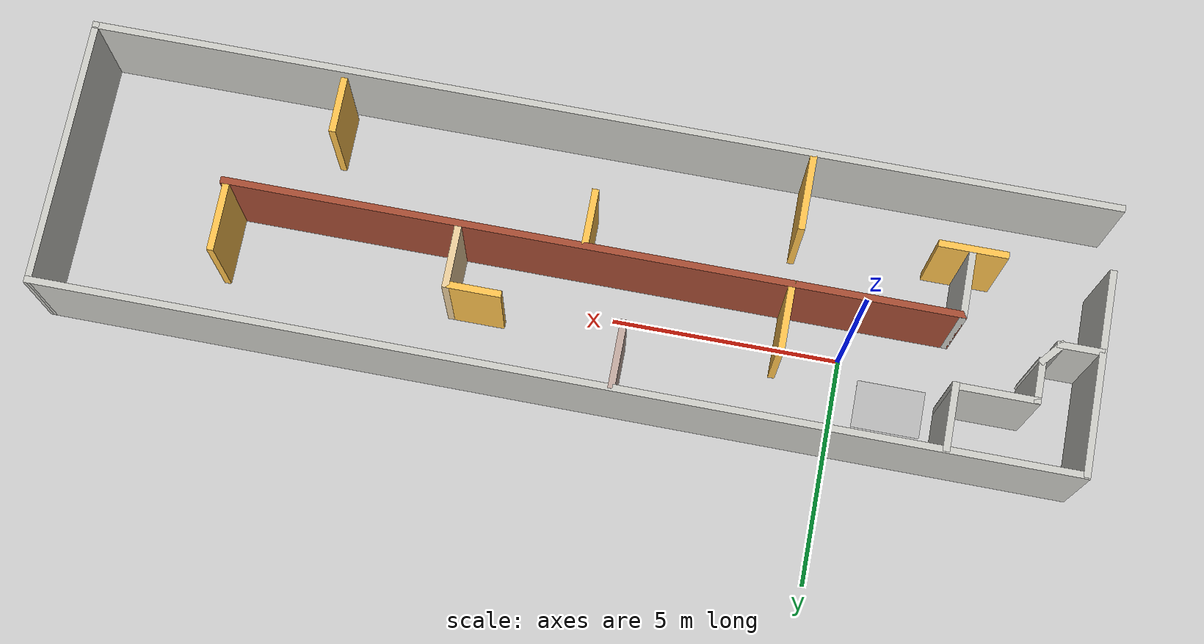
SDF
<sdf version="1.6">
 <world name="racecar_tunnel">
  <model name="ground_plane">
   <static>1</static>
   <link name="link">
    <collision name="collision">
     <geometry><plane><normal>0 0 1</normal><size>150 150</size></plane></geometry>
     <surface><friction><ode><mu>100</mu><mu2>50</mu2></ode></friction></surface>
    </collision>
    <visual name="visual">
     <cast_shadows>0</cast_shadows>
     <geometry><plane><normal>0 0 1</normal><size>150 150</size></plane></geometry>
     <material>
      <script><uri>file://media/materials/scripts/gazebo.material</uri><name>Gazebo/Grey</name></script>
     </material>
    </visual>
   </link>
  </model>
  <gravity>0 0 -9.8</gravity>
  <magnetic_field>6e-06 2.3e-05 -4.2e-05</magnetic_field>
  <atmosphere type="adiabatic"/>
  <physics name="default_physics" default="0" type="ode">
   <max_step_size>0.001</max_step_size>
   <real_time_factor>1</real_time_factor>
   <real_time_update_rate>1000</real_time_update_rate>
  </physics>
  <scene><ambient>0.4 0.4 0.4 1</ambient><background>0.7 0.7 0.7 1</background><shadows>1</shadows></scene>
  <audio><device>default</device></audio>
  <spherical_coordinates>
   <surface_model>EARTH_WGS84</surface_model>
   <latitude_deg>0</latitude_deg>
   <longitude_deg>0</longitude_deg>
   <elevation>0</elevation>
   <heading_deg>0</heading_deg>
  </spherical_coordinates>
  <light name="user_spot_light_0" type="spot">
   <pose>16.6521 12.1315 1 0 -0 0</pose>
   <diffuse>1 0 0 1</diffuse>
   <specular>0.1 0.1 0.1 1</specular>
   <direction>0 0 -1</direction>
   <attenuation>
    <range>20</range>
    <constant>0.5</constant>
    <linear>0.01</linear>
    <quadratic>0.001</quadratic>
   </attenuation>
   <cast_shadows>0</cast_shadows>
   <spot><inner_angle>0.6</inner_angle><outer_angle>1</outer_angle><falloff>1</falloff></spot>
  </light>
  <light name="user_spot_light_1" type="spot">
   <pose>14.2239 -0.851797 1 0 -0 0</pose>
   <diffuse>0 1 0 1</diffuse>
   <specular>0.1 0.1 0.1 1</specular>
   <direction>0 0 -1</direction>
   <attenuation>
    <range>20</range>
    <constant>0.5</constant>
    <linear>0.01</linear>
    <quadratic>0.001</quadratic>
   </attenuation>
   <cast_shadows>0</cast_shadows>
   <spot><inner_angle>0.6</inner_angle><outer_angle>1</outer_angle><falloff>1</falloff></spot>
  </light>
  <light name="user_spot_light_2" type="spot">
   <pose>14.5264 -0.727429 1 0 -0 0</pose>
   <diffuse>0 0 1 1</diffuse>
   <specular>0.1 0.1 0.1 1</specular>
   <direction>0 0 -1</direction>
   <attenuation>
    <range>20</range>
    <constant>0.5</constant>
    <linear>0.01</linear>
    <quadratic>0.001</quadratic>
   </attenuation>
   <cast_shadows>0</cast_shadows>
   <spot><inner_angle>0.6</inner_angle><outer_angle>1</outer_angle><falloff>1</falloff></spot>
  </light>
  <model name="iFlyDinnerHall">
   <link name="Wall_38">
    <pose>0.289282 -0.022074 0 0 -0 0</pose>
    <visual name="Wall_38_Visual">
     <pose>0 0 1.25 0 -0 0</pose>
     <geometry><box><size>16 0.15 2.5</size></box></geometry>
     <material>
      <script><uri>file://media/materials/scripts/gazebo.material</uri><name>Gazebo/Bricks</name></script>
      <ambient>1 1 1 1</ambient>
     </material>
     <meta><layer>0</layer></meta>
    </visual>
    <collision name="Wall_38_Collision">
     <pose>0 0 1.25 0 -0 0</pose>
     <geometry><box><size>16 0.15 2.5</size></box></geometry>
     <surface>
      <friction>
       <ode><mu>1</mu><mu2>1</mu2><fdir1>0 0 0</fdir1><slip1>0</slip1><slip2>0</slip2></ode>
       <torsional>
        <coefficient>1</coefficient>
        <patch_radius>0</patch_radius>
        <surface_radius>0</surface_radius>
        <use_patch_radius>1</use_patch_radius>
        <ode><slip>0</slip></ode>
       </torsional>
      </friction>
      <bounce><restitution_coefficient>0</restitution_coefficient><threshold>1e+06</threshold></bounce>
      <contact>
       <collide_without_contact>0</collide_without_contact>
       <collide_without_contact_bitmask>1</collide_without_contact_bitmask>
       <collide_bitmask>1</collide_bitmask>
       <ode>
        <soft_cfm>0</soft_cfm>
        <soft_erp>0.2</soft_erp>
        <kp>1e+13</kp>
        <kd>1</kd>
        <max_vel>0.01</max_vel>
        <min_depth>0</min_depth>
       </ode>
       <bullet>
        <split_impulse>1</split_impulse>
        <split_impulse_penetration_threshold>-0.01</split_impulse_penetration_threshold>
        <soft_cfm>0</soft_cfm>
        <soft_erp>0.2</soft_erp>
        <kp>1e+13</kp>
        <kd>1</kd>
       </bullet>
      </contact>
     </surface>
    </collision>
   </link>
   <link name="Wall_40">
    <pose>-0.001247 2.91935 0 0 -0 0</pose>
    <visual name="Wall_40_Visual">
     <pose>0 0 1.25 0 -0 0</pose>
     <geometry><box><size>22.5 0.15 2.5</size></box></geometry>
     <material>
      <script><uri>file://media/materials/scripts/gazebo.material</uri><name>Gazebo/CeilingTiled</name></script>
      <ambient>1 1 1 1</ambient>
     </material>
     <meta><layer>0</layer></meta>
    </visual>
    <collision name="Wall_40_Collision">
     <pose>0 0 1.25 0 -0 0</pose>
     <geometry><box><size>22.5 0.15 2.5</size></box></geometry>
     <surface>
      <friction>
       <ode><mu>1</mu><mu2>1</mu2><fdir1>0 0 0</fdir1><slip1>0</slip1><slip2>0</slip2></ode>
       <torsional>
        <coefficient>1</coefficient>
        <patch_radius>0</patch_radius>
        <surface_radius>0</surface_radius>
        <use_patch_radius>1</use_patch_radius>
        <ode><slip>0</slip></ode>
       </torsional>
      </friction>
      <bounce><restitution_coefficient>0</restitution_coefficient><threshold>1e+06</threshold></bounce>
      <contact>
       <collide_without_contact>0</collide_without_contact>
       <collide_without_contact_bitmask>1</collide_without_contact_bitmask>
       <collide_bitmask>1</collide_bitmask>
       <ode>
        <soft_cfm>0</soft_cfm>
        <soft_erp>0.2</soft_erp>
        <kp>1e+13</kp>
        <kd>1</kd>
        <max_vel>0.01</max_vel>
        <min_depth>0</min_depth>
       </ode>
       <bullet>
        <split_impulse>1</split_impulse>
        <split_impulse_penetration_threshold>-0.01</split_impulse_penetration_threshold>
        <soft_cfm>0</soft_cfm>
        <soft_erp>0.2</soft_erp>
        <kp>1e+13</kp>
        <kd>1</kd>
       </bullet>
      </contact>
     </surface>
    </collision>
   </link>
   <link name="Wall_43">
    <pose>11.1738 -0.725696 0 0 0 -1.57079</pose>
    <inertial>
     <mass>1</mass>
     <inertia><ixx>1</ixx><ixy>0</ixy><ixz>0</ixz><iyy>1</iyy><iyz>0</iyz><izz>1</izz></inertia>
    </inertial>
    <visual name="Wall_43_Visual">
     <pose>0 0 1.25 0 -0 0</pose>
     <geometry><box><size>4.5 0.15 2.5</size></box></geometry>
     <material>
      <script><uri>file://media/materials/scripts/gazebo.material</uri><name>Gazebo/CeilingTiled</name></script>
      <ambient>1 1 1 1</ambient>
      <shader type="vertex"><normal_map>__default__</normal_map></shader>
      <diffuse>1 1 1 1</diffuse>
      <specular>0 0 0 1</specular>
      <emissive>0 0 0 1</emissive>
     </material>
     <meta><layer>0</layer></meta>
    </visual>
    <collision name="Wall_43_Collision">
     <pose>0 0 1.25 0 -0 0</pose>
     <geometry><box><size>4.5 0.15 2.5</size></box></geometry>
     <surface>
      <friction>
       <ode><mu>1</mu><mu2>1</mu2><fdir1>0 0 0</fdir1><slip1>0</slip1><slip2>0</slip2></ode>
       <torsional>
        <coefficient>1</coefficient>
        <patch_radius>0</patch_radius>
        <surface_radius>0</surface_radius>
        <use_patch_radius>1</use_patch_radius>
        <ode><slip>0</slip></ode>
       </torsional>
      </friction>
      <bounce><restitution_coefficient>0</restitution_coefficient><threshold>1e+06</threshold></bounce>
      <contact>
       <collide_without_contact>0</collide_without_contact>
       <collide_without_contact_bitmask>1</collide_without_contact_bitmask>
       <collide_bitmask>1</collide_bitmask>
       <ode>
        <soft_cfm>0</soft_cfm>
        <soft_erp>0.2</soft_erp>
        <kp>1e+13</kp>
        <kd>1</kd>
        <max_vel>0.01</max_vel>
        <min_depth>0</min_depth>
       </ode>
       <bullet>
        <split_impulse>1</split_impulse>
        <split_impulse_penetration_threshold>-0.01</split_impulse_penetration_threshold>
        <soft_cfm>0</soft_cfm>
        <soft_erp>0.2</soft_erp>
        <kp>1e+13</kp>
        <kd>1</kd>
       </bullet>
      </contact>
     </surface>
    </collision>
   </link>
   <link name="Wall_45">
    <pose>8.21428 0.652926 0 0 -0 1.5708</pose>
    <visual name="Wall_45_Visual">
     <pose>0 0 1.25 0 -0 0</pose>
     <geometry><box><size>1.5 0.15 2.5</size></box></geometry>
     <material>
      <script><uri>file://media/materials/scripts/gazebo.material</uri><name>Gazebo/CeilingTiled</name></script>
      <ambient>1 0.764706 0.305882 1</ambient>
     </material>
     <meta><layer>0</layer></meta>
    </visual>
    <collision name="Wall_45_Collision">
     <pose>0 0 1.25 0 -0 0</pose>
     <geometry><box><size>1.5 0.15 2.5</size></box></geometry>
     <surface>
      <friction>
       <ode><mu>1</mu><mu2>1</mu2><fdir1>0 0 0</fdir1><slip1>0</slip1><slip2>0</slip2></ode>
       <torsional>
        <coefficient>1</coefficient>
        <patch_radius>0</patch_radius>
        <surface_radius>0</surface_radius>
        <use_patch_radius>1</use_patch_radius>
        <ode><slip>0</slip></ode>
       </torsional>
      </friction>
      <bounce><restitution_coefficient>0</restitution_coefficient><threshold>1e+06</threshold></bounce>
      <contact>
       <collide_without_contact>0</collide_without_contact>
       <collide_without_contact_bitmask>1</collide_without_contact_bitmask>
       <collide_bitmask>1</collide_bitmask>
       <ode>
        <soft_cfm>0</soft_cfm>
        <soft_erp>0.2</soft_erp>
        <kp>1e+13</kp>
        <kd>1</kd>
        <max_vel>0.01</max_vel>
        <min_depth>0</min_depth>
       </ode>
       <bullet>
        <split_impulse>1</split_impulse>
        <split_impulse_penetration_threshold>-0.01</split_impulse_penetration_threshold>
        <soft_cfm>0</soft_cfm>
        <soft_erp>0.2</soft_erp>
        <kp>1e+13</kp>
        <kd>1</kd>
       </bullet>
      </contact>
     </surface>
    </collision>
   </link>
   <link name="Wall_47">
    <pose>4.58768 2.06563 0 0 0 -1.5708</pose>
    <visual name="Wall_47_Visual">
     <pose>0 0 1.25 0 -0 0</pose>
     <geometry><box><size>1.75 0.15 2.5</size></box></geometry>
     <material>
      <script><uri>file://media/materials/scripts/gazebo.material</uri><name>Gazebo/Grey</name></script>
      <ambient>1 0.764706 0.305882 1</ambient>
     </material>
     <meta><layer>0</layer></meta>
    </visual>
    <collision name="Wall_47_Collision">
     <pose>0 0 1.25 0 -0 0</pose>
     <geometry><box><size>1.75 0.15 2.5</size></box></geometry>
     <surface>
      <friction>
       <ode><mu>1</mu><mu2>1</mu2><fdir1>0 0 0</fdir1><slip1>0</slip1><slip2>0</slip2></ode>
       <torsional>
        <coefficient>1</coefficient>
        <patch_radius>0</patch_radius>
        <surface_radius>0</surface_radius>
        <use_patch_radius>1</use_patch_radius>
        <ode><slip>0</slip></ode>
       </torsional>
      </friction>
      <bounce><restitution_coefficient>0</restitution_coefficient><threshold>1e+06</threshold></bounce>
      <contact>
       <collide_without_contact>0</collide_without_contact>
       <collide_without_contact_bitmask>1</collide_without_contact_bitmask>
       <collide_bitmask>1</collide_bitmask>
       <ode>
        <soft_cfm>0</soft_cfm>
        <soft_erp>0.2</soft_erp>
        <kp>1e+13</kp>
        <kd>1</kd>
        <max_vel>0.01</max_vel>
        <min_depth>0</min_depth>
       </ode>
       <bullet>
        <split_impulse>1</split_impulse>
        <split_impulse_penetration_threshold>-0.01</split_impulse_penetration_threshold>
        <soft_cfm>0</soft_cfm>
        <soft_erp>0.2</soft_erp>
        <kp>1e+13</kp>
        <kd>1</kd>
       </bullet>
      </contact>
     </surface>
    </collision>
   </link>
   <link name="Wall_51">
    <pose>0.161551 0.632231 0 0 0 -1.57079</pose>
    <visual name="Wall_51_Visual">
     <pose>0 0 1.25 0 -0 0</pose>
     <geometry><box><size>1.25 0.15 2.5</size></box></geometry>
     <material>
      <script><uri>file://media/materials/scripts/gazebo.material</uri><name>Gazebo/Grey</name></script>
      <ambient>1 0.764706 0.305882 1</ambient>
     </material>
     <meta><layer>0</layer></meta>
    </visual>
    <collision name="Wall_51_Collision">
     <pose>0 0 1.25 0 -0 0</pose>
     <geometry><box><size>1.25 0.15 2.5</size></box></geometry>
     <surface>
      <friction>
       <ode><mu>1</mu><mu2>1</mu2><fdir1>0 0 0</fdir1><slip1>0</slip1><slip2>0</slip2></ode>
       <torsional>
        <coefficient>1</coefficient>
        <patch_radius>0</patch_radius>
        <surface_radius>0</surface_radius>
        <use_patch_radius>1</use_patch_radius>
        <ode><slip>0</slip></ode>
       </torsional>
      </friction>
      <bounce><restitution_coefficient>0</restitution_coefficient><threshold>1e+06</threshold></bounce>
      <contact>
       <collide_without_contact>0</collide_without_contact>
       <collide_without_contact_bitmask>1</collide_without_contact_bitmask>
       <collide_bitmask>1</collide_bitmask>
       <ode>
        <soft_cfm>0</soft_cfm>
        <soft_erp>0.2</soft_erp>
        <kp>1e+13</kp>
        <kd>1</kd>
        <max_vel>0.01</max_vel>
        <min_depth>0</min_depth>
       </ode>
       <bullet>
        <split_impulse>1</split_impulse>
        <split_impulse_penetration_threshold>-0.01</split_impulse_penetration_threshold>
        <soft_cfm>0</soft_cfm>
        <soft_erp>0.2</soft_erp>
        <kp>1e+13</kp>
        <kd>1</kd>
       </bullet>
      </contact>
     </surface>
    </collision>
   </link>
   <link name="Wall_53">
    <pose>-5.61929 2.1035 0 0 -0 1.57081</pose>
    <visual name="Wall_53_Visual">
     <pose>0 0 1.25 0 -0 0</pose>
     <geometry><box><size>1.25 0.15 2.5</size></box></geometry>
     <material>
      <script><uri>file://media/materials/scripts/gazebo.material</uri><name>Gazebo/Grey</name></script>
      <ambient>1 0.764706 0.305882 1</ambient>
     </material>
     <meta><layer>0</layer></meta>
    </visual>
    <collision name="Wall_53_Collision">
     <pose>0 0 1.25 0 -0 0</pose>
     <geometry><box><size>1.25 0.15 2.5</size></box></geometry>
     <surface>
      <friction>
       <ode><mu>1</mu><mu2>1</mu2><fdir1>0 0 0</fdir1><slip1>0</slip1><slip2>0</slip2></ode>
       <torsional>
        <coefficient>1</coefficient>
        <patch_radius>0</patch_radius>
        <surface_radius>0</surface_radius>
        <use_patch_radius>1</use_patch_radius>
        <ode><slip>0</slip></ode>
       </torsional>
      </friction>
      <bounce><restitution_coefficient>0</restitution_coefficient><threshold>1e+06</threshold></bounce>
      <contact>
       <collide_without_contact>0</collide_without_contact>
       <collide_without_contact_bitmask>1</collide_without_contact_bitmask>
       <collide_bitmask>1</collide_bitmask>
       <ode>
        <soft_cfm>0</soft_cfm>
        <soft_erp>0.2</soft_erp>
        <kp>1e+13</kp>
        <kd>1</kd>
        <max_vel>0.01</max_vel>
        <min_depth>0</min_depth>
       </ode>
       <bullet>
        <split_impulse>1</split_impulse>
        <split_impulse_penetration_threshold>-0.01</split_impulse_penetration_threshold>
        <soft_cfm>0</soft_cfm>
        <soft_erp>0.2</soft_erp>
        <kp>1e+13</kp>
        <kd>1</kd>
       </bullet>
      </contact>
     </surface>
    </collision>
   </link>
   <link name="Wall_55">
    <pose>-11.1762 -0.00565 0 0 0 -1.5708</pose>
    <visual name="Wall_55_Visual">
     <pose>0 0 1.25 0 -0 0</pose>
     <geometry><box><size>6 0.15 2.5</size></box></geometry>
     <material>
      <script><uri>file://media/materials/scripts/gazebo.material</uri><name>Gazebo/CeilingTiled</name></script>
      <ambient>1 1 1 1</ambient>
     </material>
     <meta><layer>0</layer></meta>
    </visual>
    <collision name="Wall_55_Collision">
     <pose>0 0 1.25 0 -0 0</pose>
     <geometry><box><size>6 0.15 2.5</size></box></geometry>
     <surface>
      <friction>
       <ode><mu>1</mu><mu2>1</mu2><fdir1>0 0 0</fdir1><slip1>0</slip1><slip2>0</slip2></ode>
       <torsional>
        <coefficient>1</coefficient>
        <patch_radius>0</patch_radius>
        <surface_radius>0</surface_radius>
        <use_patch_radius>1</use_patch_radius>
        <ode><slip>0</slip></ode>
       </torsional>
      </friction>
      <bounce><restitution_coefficient>0</restitution_coefficient><threshold>1e+06</threshold></bounce>
      <contact>
       <collide_without_contact>0</collide_without_contact>
       <collide_without_contact_bitmask>1</collide_without_contact_bitmask>
       <collide_bitmask>1</collide_bitmask>
       <ode>
        <soft_cfm>0</soft_cfm>
        <soft_erp>0.2</soft_erp>
        <kp>1e+13</kp>
        <kd>1</kd>
        <max_vel>0.01</max_vel>
        <min_depth>0</min_depth>
       </ode>
       <bullet>
        <split_impulse>1</split_impulse>
        <split_impulse_penetration_threshold>-0.01</split_impulse_penetration_threshold>
        <soft_cfm>0</soft_cfm>
        <soft_erp>0.2</soft_erp>
        <kp>1e+13</kp>
        <kd>1</kd>
       </bullet>
      </contact>
     </surface>
    </collision>
   </link>
   <link name="Wall_59">
    <pose>-0.001247 -2.93065 0 0 -0 0</pose>
    <visual name="Wall_59_Visual">
     <pose>0 0 1.25 0 -0 0</pose>
     <geometry><box><size>22.5 0.15 2.5</size></box></geometry>
     <material>
      <script><uri>file://media/materials/scripts/gazebo.material</uri><name>Gazebo/CeilingTiled</name></script>
      <ambient>1 1 1 1</ambient>
     </material>
     <meta><layer>0</layer></meta>
    </visual>
    <collision name="Wall_59_Collision">
     <pose>0 0 1.25 0 -0 0</pose>
     <geometry><box><size>22.5 0.15 2.5</size></box></geometry>
     <surface>
      <friction>
       <ode><mu>1</mu><mu2>1</mu2><fdir1>0 0 0</fdir1><slip1>0</slip1><slip2>0</slip2></ode>
       <torsional>
        <coefficient>1</coefficient>
        <patch_radius>0</patch_radius>
        <surface_radius>0</surface_radius>
        <use_patch_radius>1</use_patch_radius>
        <ode><slip>0</slip></ode>
       </torsional>
      </friction>
      <bounce><restitution_coefficient>0</restitution_coefficient><threshold>1e+06</threshold></bounce>
      <contact>
       <collide_without_contact>0</collide_without_contact>
       <collide_without_contact_bitmask>1</collide_without_contact_bitmask>
       <collide_bitmask>1</collide_bitmask>
       <ode>
        <soft_cfm>0</soft_cfm>
        <soft_erp>0.2</soft_erp>
        <kp>1e+13</kp>
        <kd>1</kd>
        <max_vel>0.01</max_vel>
        <min_depth>0</min_depth>
       </ode>
       <bullet>
        <split_impulse>1</split_impulse>
        <split_impulse_penetration_threshold>-0.01</split_impulse_penetration_threshold>
        <soft_cfm>0</soft_cfm>
        <soft_erp>0.2</soft_erp>
        <kp>1e+13</kp>
        <kd>1</kd>
       </bullet>
      </contact>
     </surface>
    </collision>
   </link>
   <link name="Wall_67">
    <pose>8.22711 1.43575 0 0 -0 0</pose>
    <visual name="Wall_67_Visual">
     <pose>0 0 1.25 0 -0 0</pose>
     <geometry><box><size>1.5 0.15 2.5</size></box></geometry>
     <material>
      <script><uri>file://media/materials/scripts/gazebo.material</uri><name>Gazebo/Grey</name></script>
      <ambient>1 0.764706 0.305882 1</ambient>
     </material>
     <meta><layer>0</layer></meta>
    </visual>
    <collision name="Wall_67_Collision">
     <pose>0 0 1.25 0 -0 0</pose>
     <geometry><box><size>1.5 0.15 2.5</size></box></geometry>
     <surface>
      <friction>
       <ode><mu>1</mu><mu2>1</mu2><fdir1>0 0 0</fdir1><slip1>0</slip1><slip2>0</slip2></ode>
       <torsional>
        <coefficient>1</coefficient>
        <patch_radius>0</patch_radius>
        <surface_radius>0</surface_radius>
        <use_patch_radius>1</use_patch_radius>
        <ode><slip>0</slip></ode>
       </torsional>
      </friction>
      <bounce><restitution_coefficient>0</restitution_coefficient><threshold>1e+06</threshold></bounce>
      <contact>
       <collide_without_contact>0</collide_without_contact>
       <collide_without_contact_bitmask>1</collide_without_contact_bitmask>
       <collide_bitmask>1</collide_bitmask>
       <ode>
        <soft_cfm>0</soft_cfm>
        <soft_erp>0.2</soft_erp>
        <kp>1e+13</kp>
        <kd>1</kd>
        <max_vel>0.01</max_vel>
        <min_depth>0</min_depth>
       </ode>
       <bullet>
        <split_impulse>1</split_impulse>
        <split_impulse_penetration_threshold>-0.01</split_impulse_penetration_threshold>
        <soft_cfm>0</soft_cfm>
        <soft_erp>0.2</soft_erp>
        <kp>1e+13</kp>
        <kd>1</kd>
       </bullet>
      </contact>
     </surface>
    </collision>
   </link>
   <link name="Wall_69">
    <pose>-7.57062 -0.838015 0 0 -0 1.57081</pose>
    <visual name="Wall_69_Visual">
     <pose>0 0 1.25 0 -0 0</pose>
     <geometry><box><size>1.5 0.15 2.5</size></box></geometry>
     <material>
      <script><uri>file://media/materials/scripts/gazebo.material</uri><name>Gazebo/Grey</name></script>
      <ambient>1 0.764706 0.305882 1</ambient>
     </material>
     <meta><layer>0</layer></meta>
    </visual>
    <collision name="Wall_69_Collision">
     <pose>0 0 1.25 0 -0 0</pose>
     <geometry><box><size>1.5 0.15 2.5</size></box></geometry>
     <surface>
      <friction>
       <ode><mu>1</mu><mu2>1</mu2><fdir1>0 0 0</fdir1><slip1>0</slip1><slip2>0</slip2></ode>
       <torsional>
        <coefficient>1</coefficient>
        <patch_radius>0</patch_radius>
        <surface_radius>0</surface_radius>
        <use_patch_radius>1</use_patch_radius>
        <ode><slip>0</slip></ode>
       </torsional>
      </friction>
      <bounce><restitution_coefficient>0</restitution_coefficient><threshold>1e+06</threshold></bounce>
      <contact>
       <collide_without_contact>0</collide_without_contact>
       <collide_without_contact_bitmask>1</collide_without_contact_bitmask>
       <collide_bitmask>1</collide_bitmask>
       <ode>
        <soft_cfm>0</soft_cfm>
        <soft_erp>0.2</soft_erp>
        <kp>1e+13</kp>
        <kd>1</kd>
        <max_vel>0.01</max_vel>
        <min_depth>0</min_depth>
       </ode>
       <bullet>
        <split_impulse>1</split_impulse>
        <split_impulse_penetration_threshold>-0.01</split_impulse_penetration_threshold>
        <soft_cfm>0</soft_cfm>
        <soft_erp>0.2</soft_erp>
        <kp>1e+13</kp>
        <kd>1</kd>
       </bullet>
      </contact>
     </surface>
    </collision>
   </link>
   <link name="Wall_71">
    <pose>-2.54202 -0.716323 0 0 0 -1.57079</pose>
    <visual name="Wall_71_Visual">
     <pose>0 0 1.25 0 -0 0</pose>
     <geometry><box><size>1.5 0.15 2.5</size></box></geometry>
     <material>
      <script><uri>file://media/materials/scripts/gazebo.material</uri><name>Gazebo/Grey</name></script>
      <ambient>0.921569 0.807843 0.615686 1</ambient>
     </material>
     <meta><layer>0</layer></meta>
    </visual>
    <collision name="Wall_71_Collision">
     <pose>0 0 1.25 0 -0 0</pose>
     <geometry><box><size>1.5 0.15 2.5</size></box></geometry>
     <surface>
      <friction>
       <ode><mu>1</mu><mu2>1</mu2><fdir1>0 0 0</fdir1><slip1>0</slip1><slip2>0</slip2></ode>
       <torsional>
        <coefficient>1</coefficient>
        <patch_radius>0</patch_radius>
        <surface_radius>0</surface_radius>
        <use_patch_radius>1</use_patch_radius>
        <ode><slip>0</slip></ode>
       </torsional>
      </friction>
      <bounce><restitution_coefficient>0</restitution_coefficient><threshold>1e+06</threshold></bounce>
      <contact>
       <collide_without_contact>0</collide_without_contact>
       <collide_without_contact_bitmask>1</collide_without_contact_bitmask>
       <collide_bitmask>1</collide_bitmask>
       <ode>
        <soft_cfm>0</soft_cfm>
        <soft_erp>0.2</soft_erp>
        <kp>1e+13</kp>
        <kd>1</kd>
        <max_vel>0.01</max_vel>
        <min_depth>0</min_depth>
       </ode>
       <bullet>
        <split_impulse>1</split_impulse>
        <split_impulse_penetration_threshold>-0.01</split_impulse_penetration_threshold>
        <soft_cfm>0</soft_cfm>
        <soft_erp>0.2</soft_erp>
        <kp>1e+13</kp>
        <kd>1</kd>
       </bullet>
      </contact>
     </surface>
    </collision>
   </link>
   <link name="Wall_73">
    <pose>1.27057 -2.20353 0 0 -0 1.5708</pose>
    <visual name="Wall_73_Visual">
     <pose>0 0 1.25 0 -0 0</pose>
     <geometry><box><size>1.5 0.15 2.5</size></box></geometry>
     <material>
      <script><uri>file://media/materials/scripts/gazebo.material</uri><name>Gazebo/Grey</name></script>
      <ambient>0.760784 0.662745 0.627451 1</ambient>
     </material>
     <meta><layer>0</layer></meta>
    </visual>
    <collision name="Wall_73_Collision">
     <pose>0 0 1.25 0 -0 0</pose>
     <geometry><box><size>1.5 0.15 2.5</size></box></geometry>
     <surface>
      <friction>
       <ode><mu>1</mu><mu2>1</mu2><fdir1>0 0 0</fdir1><slip1>0</slip1><slip2>0</slip2></ode>
       <torsional>
        <coefficient>1</coefficient>
        <patch_radius>0</patch_radius>
        <surface_radius>0</surface_radius>
        <use_patch_radius>1</use_patch_radius>
        <ode><slip>0</slip></ode>
       </torsional>
      </friction>
      <bounce><restitution_coefficient>0</restitution_coefficient><threshold>1e+06</threshold></bounce>
      <contact>
       <collide_without_contact>0</collide_without_contact>
       <collide_without_contact_bitmask>1</collide_without_contact_bitmask>
       <collide_bitmask>1</collide_bitmask>
       <ode>
        <soft_cfm>0</soft_cfm>
        <soft_erp>0.2</soft_erp>
        <kp>1e+13</kp>
        <kd>1</kd>
        <max_vel>0.01</max_vel>
        <min_depth>0</min_depth>
       </ode>
       <bullet>
        <split_impulse>1</split_impulse>
        <split_impulse_penetration_threshold>-0.01</split_impulse_penetration_threshold>
        <soft_cfm>0</soft_cfm>
        <soft_erp>0.2</soft_erp>
        <kp>1e+13</kp>
        <kd>1</kd>
       </bullet>
      </contact>
     </surface>
    </collision>
   </link>
   <link name="Wall_75">
    <pose>4.59368 -0.717 0 0 0 -1.5708</pose>
    <visual name="Wall_75_Visual">
     <pose>0 0 1.25 0 -0 0</pose>
     <geometry><box><size>1.5 0.15 2.5</size></box></geometry>
     <material>
      <script><uri>file://media/materials/scripts/gazebo.material</uri><name>Gazebo/Grey</name></script>
      <ambient>1 0.764706 0.305882 1</ambient>
     </material>
     <meta><layer>0</layer></meta>
    </visual>
    <collision name="Wall_75_Collision">
     <pose>0 0 1.25 0 -0 0</pose>
     <geometry><box><size>1.5 0.15 2.5</size></box></geometry>
     <surface>
      <friction>
       <ode><mu>1</mu><mu2>1</mu2><fdir1>0 0 0</fdir1><slip1>0</slip1><slip2>0</slip2></ode>
       <torsional>
        <coefficient>1</coefficient>
        <patch_radius>0</patch_radius>
        <surface_radius>0</surface_radius>
        <use_patch_radius>1</use_patch_radius>
        <ode><slip>0</slip></ode>
       </torsional>
      </friction>
      <bounce><restitution_coefficient>0</restitution_coefficient><threshold>1e+06</threshold></bounce>
      <contact>
       <collide_without_contact>0</collide_without_contact>
       <collide_without_contact_bitmask>1</collide_without_contact_bitmask>
       <collide_bitmask>1</collide_bitmask>
       <ode>
        <soft_cfm>0</soft_cfm>
        <soft_erp>0.2</soft_erp>
        <kp>1e+13</kp>
        <kd>1</kd>
        <max_vel>0.01</max_vel>
        <min_depth>0</min_depth>
       </ode>
       <bullet>
        <split_impulse>1</split_impulse>
        <split_impulse_penetration_threshold>-0.01</split_impulse_penetration_threshold>
        <soft_cfm>0</soft_cfm>
        <soft_erp>0.2</soft_erp>
        <kp>1e+13</kp>
        <kd>1</kd>
       </bullet>
      </contact>
     </surface>
    </collision>
   </link>
   <link name="Wall_78">
    <pose>8.26659 -2.22437 0 0 -0 1.5708</pose>
    <visual name="Wall_78_Visual">
     <pose>0 0 1.25 0 -0 0</pose>
     <geometry><box><size>1.5 0.15 2.5</size></box></geometry>
     <material>
      <script><uri>file://media/materials/scripts/gazebo.material</uri><name>Gazebo/CeilingTiled</name></script>
      <ambient>0.929412 0.831373 0 1</ambient>
     </material>
     <meta><layer>0</layer></meta>
    </visual>
    <collision name="Wall_78_Collision">
     <pose>0 0 1.25 0 -0 0</pose>
     <geometry><box><size>1.5 0.15 2.5</size></box></geometry>
     <surface>
      <friction>
       <ode><mu>1</mu><mu2>1</mu2><fdir1>0 0 0</fdir1><slip1>0</slip1><slip2>0</slip2></ode>
       <torsional>
        <coefficient>1</coefficient>
        <patch_radius>0</patch_radius>
        <surface_radius>0</surface_radius>
        <use_patch_radius>1</use_patch_radius>
        <ode><slip>0</slip></ode>
       </torsional>
      </friction>
      <bounce><restitution_coefficient>0</restitution_coefficient><threshold>1e+06</threshold></bounce>
      <contact>
       <collide_without_contact>0</collide_without_contact>
       <collide_without_contact_bitmask>1</collide_without_contact_bitmask>
       <collide_bitmask>1</collide_bitmask>
       <ode>
        <soft_cfm>0</soft_cfm>
        <soft_erp>0.2</soft_erp>
        <kp>1e+13</kp>
        <kd>1</kd>
        <max_vel>0.01</max_vel>
        <min_depth>0</min_depth>
       </ode>
       <bullet>
        <split_impulse>1</split_impulse>
        <split_impulse_penetration_threshold>-0.01</split_impulse_penetration_threshold>
        <soft_cfm>0</soft_cfm>
        <soft_erp>0.2</soft_erp>
        <kp>1e+13</kp>
        <kd>1</kd>
       </bullet>
      </contact>
     </surface>
    </collision>
   </link>
   <link name="Wall_80">
    <pose>-1.97619 -1.39132 0 0 -0 0</pose>
    <visual name="Wall_80_Visual">
     <pose>0 0 1.25 0 -0 0</pose>
     <geometry><box><size>1.25 0.15 2.5</size></box></geometry>
     <material>
      <script><uri>file://media/materials/scripts/gazebo.material</uri><name>Gazebo/Grey</name></script>
      <ambient>1 0.764706 0.305882 1</ambient>
     </material>
     <meta><layer>0</layer></meta>
    </visual>
    <collision name="Wall_80_Collision">
     <pose>0 0 1.25 0 -0 0</pose>
     <geometry><box><size>1.25 0.15 2.5</size></box></geometry>
     <surface>
      <friction>
       <ode><mu>1</mu><mu2>1</mu2><fdir1>0 0 0</fdir1><slip1>0</slip1><slip2>0</slip2></ode>
       <torsional>
        <coefficient>1</coefficient>
        <patch_radius>0</patch_radius>
        <surface_radius>0</surface_radius>
        <use_patch_radius>1</use_patch_radius>
        <ode><slip>0</slip></ode>
       </torsional>
      </friction>
      <bounce><restitution_coefficient>0</restitution_coefficient><threshold>1e+06</threshold></bounce>
      <contact>
       <collide_without_contact>0</collide_without_contact>
       <collide_without_contact_bitmask>1</collide_without_contact_bitmask>
       <collide_bitmask>1</collide_bitmask>
       <ode>
        <soft_cfm>0</soft_cfm>
        <soft_erp>0.2</soft_erp>
        <kp>1e+13</kp>
        <kd>1</kd>
        <max_vel>0.01</max_vel>
        <min_depth>0</min_depth>
       </ode>
       <bullet>
        <split_impulse>1</split_impulse>
        <split_impulse_penetration_threshold>-0.01</split_impulse_penetration_threshold>
        <soft_cfm>0</soft_cfm>
        <soft_erp>0.2</soft_erp>
        <kp>1e+13</kp>
        <kd>1</kd>
       </bullet>
      </contact>
     </surface>
    </collision>
   </link>
   <link name="Wall_82">
    <pose>9.11726 -1.56037 0 0 -0 0</pose>
    <visual name="Wall_82_Visual">
     <pose>0 0 1.25 0 -0 0</pose>
     <geometry><box><size>1.85138 0.15 2.5</size></box></geometry>
     <material>
      <script><uri>file://media/materials/scripts/gazebo.material</uri><name>Gazebo/CeilingTiled</name></script>
      <ambient>0.929412 0.831373 0 1</ambient>
     </material>
     <meta><layer>0</layer></meta>
    </visual>
    <collision name="Wall_82_Collision">
     <pose>0 0 1.25 0 -0 0</pose>
     <geometry><box><size>1.85138 0.15 2.5</size></box></geometry>
     <surface>
      <friction>
       <ode><mu>1</mu><mu2>1</mu2><fdir1>0 0 0</fdir1><slip1>0</slip1><slip2>0</slip2></ode>
       <torsional>
        <coefficient>1</coefficient>
        <patch_radius>0</patch_radius>
        <surface_radius>0</surface_radius>
        <use_patch_radius>1</use_patch_radius>
        <ode><slip>0</slip></ode>
       </torsional>
      </friction>
      <bounce><restitution_coefficient>0</restitution_coefficient><threshold>1e+06</threshold></bounce>
      <contact>
       <collide_without_contact>0</collide_without_contact>
       <collide_without_contact_bitmask>1</collide_without_contact_bitmask>
       <collide_bitmask>1</collide_bitmask>
       <ode>
        <soft_cfm>0</soft_cfm>
        <soft_erp>0.2</soft_erp>
        <kp>1e+13</kp>
        <kd>1</kd>
        <max_vel>0.01</max_vel>
        <min_depth>0</min_depth>
       </ode>
       <bullet>
        <split_impulse>1</split_impulse>
        <split_impulse_penetration_threshold>-0.01</split_impulse_penetration_threshold>
        <soft_cfm>0</soft_cfm>
        <soft_erp>0.2</soft_erp>
        <kp>1e+13</kp>
        <kd>1</kd>
       </bullet>
      </contact>
     </surface>
    </collision>
   </link>
   <link name="Wall_84">
    <pose>9.96794 -1.12393 0 0 -0 1.5708</pose>
    <visual name="Wall_84_Visual">
     <pose>0 0 1.25 0 -0 0</pose>
     <geometry><box><size>1 0.15 2.5</size></box></geometry>
     <material>
      <script><uri>file://media/materials/scripts/gazebo.material</uri><name>Gazebo/CeilingTiled</name></script>
      <ambient>0.929412 0.831373 0 1</ambient>
     </material>
     <meta><layer>0</layer></meta>
    </visual>
    <collision name="Wall_84_Collision">
     <pose>0 0 1.25 0 -0 0</pose>
     <geometry><box><size>1 0.15 2.5</size></box></geometry>
     <surface>
      <friction>
       <ode><mu>1</mu><mu2>1</mu2><fdir1>0 0 0</fdir1><slip1>0</slip1><slip2>0</slip2></ode>
       <torsional>
        <coefficient>1</coefficient>
        <patch_radius>0</patch_radius>
        <surface_radius>0</surface_radius>
        <use_patch_radius>1</use_patch_radius>
        <ode><slip>0</slip></ode>
       </torsional>
      </friction>
      <bounce><restitution_coefficient>0</restitution_coefficient><threshold>1e+06</threshold></bounce>
      <contact>
       <collide_without_contact>0</collide_without_contact>
       <collide_without_contact_bitmask>1</collide_without_contact_bitmask>
       <collide_bitmask>1</collide_bitmask>
       <ode>
        <soft_cfm>0</soft_cfm>
        <soft_erp>0.2</soft_erp>
        <kp>1e+13</kp>
        <kd>1</kd>
        <max_vel>0.01</max_vel>
        <min_depth>0</min_depth>
       </ode>
       <bullet>
        <split_impulse>1</split_impulse>
        <split_impulse_penetration_threshold>-0.01</split_impulse_penetration_threshold>
        <soft_cfm>0</soft_cfm>
        <soft_erp>0.2</soft_erp>
        <kp>1e+13</kp>
        <kd>1</kd>
       </bullet>
      </contact>
     </surface>
    </collision>
   </link>
   <link name="Wall_85">
    <pose>10.1471 -0.492153 0 0 -0 0.85686</pose>
    <visual name="Wall_85_Visual">
     <pose>0 0 1.25 0 -0 0</pose>
     <geometry><box><size>0.697195 0.15 2.5</size></box></geometry>
     <material>
      <script><uri>file://media/materials/scripts/gazebo.material</uri><name>Gazebo/CeilingTiled</name></script>
      <ambient>0.929412 0.831373 0 1</ambient>
     </material>
     <meta><layer>0</layer></meta>
    </visual>
    <collision name="Wall_85_Collision">
     <pose>0 0 1.25 0 -0 0</pose>
     <geometry><box><size>0.697195 0.15 2.5</size></box></geometry>
     <surface>
      <friction>
       <ode><mu>1</mu><mu2>1</mu2><fdir1>0 0 0</fdir1><slip1>0</slip1><slip2>0</slip2></ode>
       <torsional>
        <coefficient>1</coefficient>
        <patch_radius>0</patch_radius>
        <surface_radius>0</surface_radius>
        <use_patch_radius>1</use_patch_radius>
        <ode><slip>0</slip></ode>
       </torsional>
      </friction>
      <bounce><restitution_coefficient>0</restitution_coefficient><threshold>1e+06</threshold></bounce>
      <contact>
       <collide_without_contact>0</collide_without_contact>
       <collide_without_contact_bitmask>1</collide_without_contact_bitmask>
       <collide_bitmask>1</collide_bitmask>
       <ode>
        <soft_cfm>0</soft_cfm>
        <soft_erp>0.2</soft_erp>
        <kp>1e+13</kp>
        <kd>1</kd>
        <max_vel>0.01</max_vel>
        <min_depth>0</min_depth>
       </ode>
       <bullet>
        <split_impulse>1</split_impulse>
        <split_impulse_penetration_threshold>-0.01</split_impulse_penetration_threshold>
        <soft_cfm>0</soft_cfm>
        <soft_erp>0.2</soft_erp>
        <kp>1e+13</kp>
        <kd>1</kd>
       </bullet>
      </contact>
     </surface>
    </collision>
   </link>
   <link name="Wall_86">
    <pose>10.7125 -0.285371 0 0 -0 0</pose>
    <visual name="Wall_86_Visual">
     <pose>0 0 1.25 0 -0 0</pose>
     <geometry><box><size>1 0.15 2.5</size></box></geometry>
     <material>
      <script><uri>file://media/materials/scripts/gazebo.material</uri><name>Gazebo/CeilingTiled</name></script>
      <ambient>0.929412 0.831373 0 1</ambient>
     </material>
     <meta><layer>0</layer></meta>
    </visual>
    <collision name="Wall_86_Collision">
     <pose>0 0 1.25 0 -0 0</pose>
     <geometry><box><size>1 0.15 2.5</size></box></geometry>
     <surface>
      <friction>
       <ode><mu>1</mu><mu2>1</mu2><fdir1>0 0 0</fdir1><slip1>0</slip1><slip2>0</slip2></ode>
       <torsional>
        <coefficient>1</coefficient>
        <patch_radius>0</patch_radius>
        <surface_radius>0</surface_radius>
        <use_patch_radius>1</use_patch_radius>
        <ode><slip>0</slip></ode>
       </torsional>
      </friction>
      <bounce><restitution_coefficient>0</restitution_coefficient><threshold>1e+06</threshold></bounce>
      <contact>
       <collide_without_contact>0</collide_without_contact>
       <collide_without_contact_bitmask>1</collide_without_contact_bitmask>
       <collide_bitmask>1</collide_bitmask>
       <ode>
        <soft_cfm>0</soft_cfm>
        <soft_erp>0.2</soft_erp>
        <kp>1e+13</kp>
        <kd>1</kd>
        <max_vel>0.01</max_vel>
        <min_depth>0</min_depth>
       </ode>
       <bullet>
        <split_impulse>1</split_impulse>
        <split_impulse_penetration_threshold>-0.01</split_impulse_penetration_threshold>
        <soft_cfm>0</soft_cfm>
        <soft_erp>0.2</soft_erp>
        <kp>1e+13</kp>
        <kd>1</kd>
       </bullet>
      </contact>
     </surface>
    </collision>
   </link>
   <static>1</static>
   <pose>5.97386 -0.874248 0 0 -0 3.13904</pose>
  </model>
  <model name="poster_machinarium">
   <static>1</static>
   <link name="link">
    <collision name="collision">
     <geometry><box><size>1.3038 1.053 0.001</size></box></geometry>
     <surface><friction><ode><mu>100</mu><mu2>50</mu2></ode></friction></surface>
    </collision>
    <visual name="visual">
     <geometry><box><size>1.3038 1.053 0.001</size></box></geometry>
     <material>
      <script>
       <uri>model://poster_machinarium/materials/scripts</uri>
       <uri>model://poster_machinarium/materials/textures/</uri>
       <name>MachinariumPoster/Image</name>
      </script>
     </material>
    </visual>
   </link>
   <pose>1.2983 -2.902 1.51554 -1.53439 -1.41412 1.53483</pose>
  </model>
  <model name="poster_machinarium_0">
   <static>1</static>
   <link name="link">
    <collision name="collision">
     <geometry><box><size>1.5 1.053 0.001</size></box></geometry>
     <surface><friction><ode><mu>100</mu><mu2>50</mu2></ode></friction></surface>
    </collision>
    <visual name="visual">
     <geometry><box><size>1.5 1.053 0.001</size></box></geometry>
     <material>
      <script>
       <uri>model://poster_machinarium/materials/scripts</uri>
       <uri>model://poster_machinarium/materials/textures/</uri>
       <name>MachinariumPoster/Image</name>
      </script>
     </material>
    </visual>
   </link>
   <pose>-1.24288 0.835097 0 0 -0 0</pose>
  </model>
  <light name="user_directional_light_0" type="directional">
   <pose>14.8145 -9.14271 1 0 -0 0</pose>
   <diffuse>0.5 0.5 0.5 1</diffuse>
   <specular>0.1 0.1 0.1 1</specular>
   <direction>0.1 0.1 -0.9</direction>
   <attenuation>
    <range>20</range>
    <constant>0.5</constant>
    <linear>0.01</linear>
    <quadratic>0.001</quadratic>
   </attenuation>
  </light>
 </world>
</sdf>
